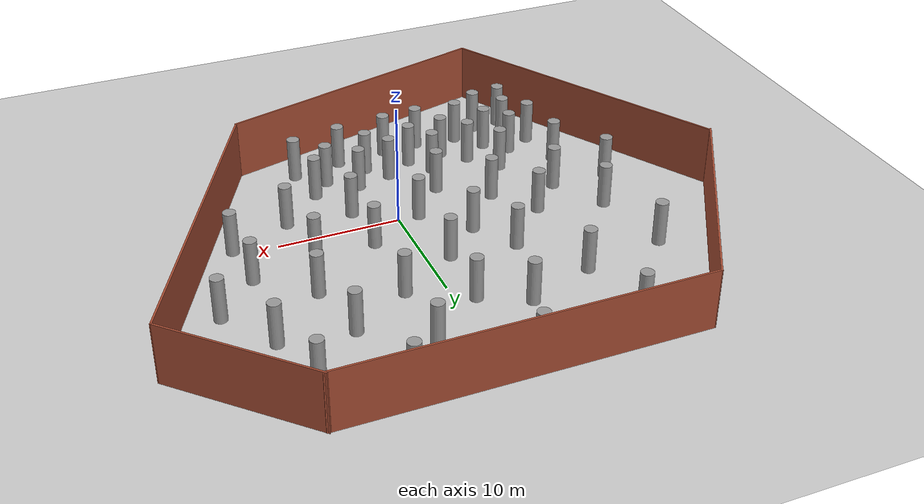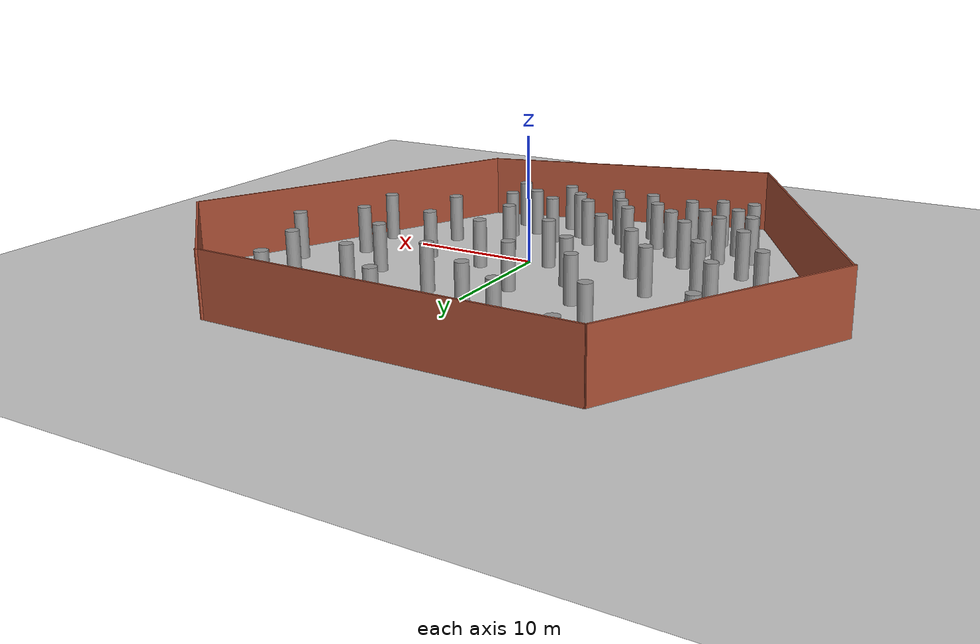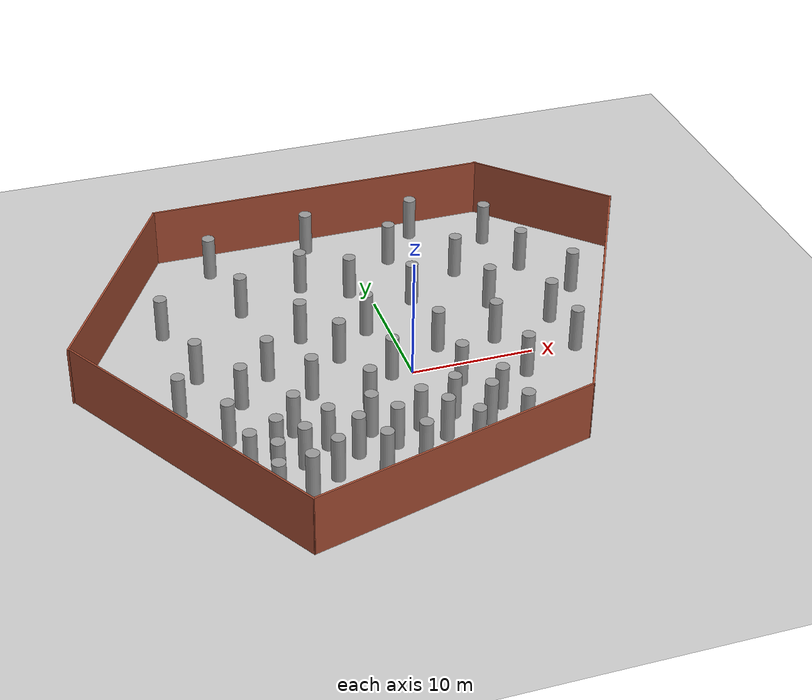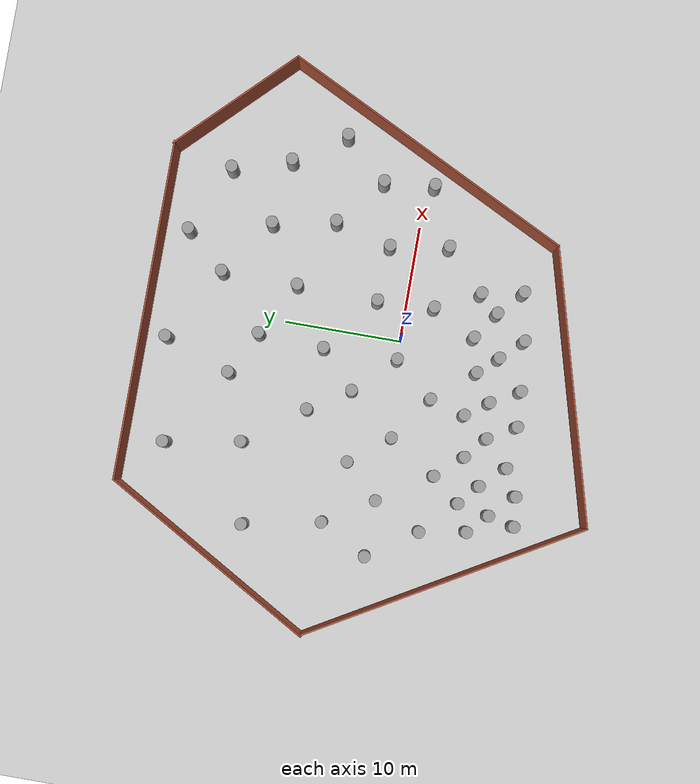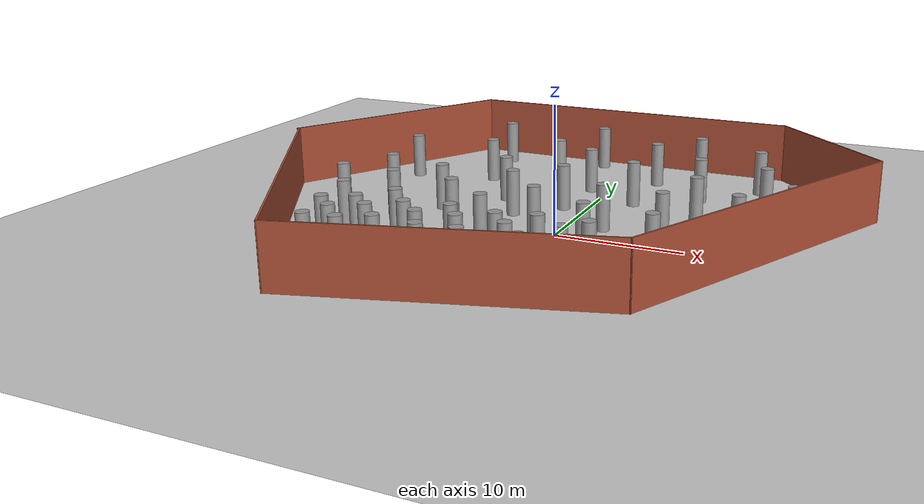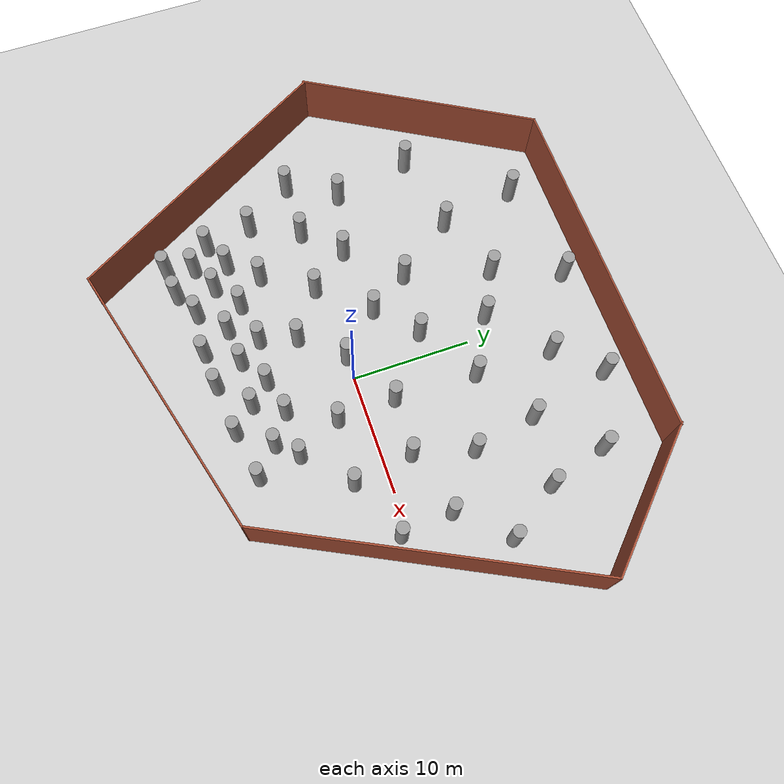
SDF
<sdf version="1.7">
 <world name="default">
  <light name="sun" type="directional">
   <pose>0 0 10 0 -0 0</pose>
   <diffuse>0.8 0.8 0.8 1</diffuse>
   <specular>0.2 0.2 0.2 1</specular>
   <attenuation>
    <range>1000</range>
    <constant>0.9</constant>
    <linear>0.01</linear>
    <quadratic>0.001</quadratic>
   </attenuation>
   <direction>-0.5 0.1 -0.9</direction>
   <spot><inner_angle>0</inner_angle><outer_angle>0</outer_angle><falloff>0</falloff></spot>
  </light>
  <model name="ground_plane">
   <static>1</static>
   <link name="link">
    <collision name="collision">
     <geometry><plane><normal>0 0 1</normal><size>100 100</size></plane></geometry>
     <surface>
      <contact><collide_bitmask>65535</collide_bitmask></contact>
      <friction><ode><mu>100</mu><mu2>50</mu2></ode></friction>
     </surface>
    </collision>
    <visual name="visual">
     <cast_shadows>0</cast_shadows>
     <geometry><plane><normal>0 0 1</normal><size>100 100</size></plane></geometry>
     <material>
      <script><uri>file://media/materials/scripts/gazebo.material</uri><name>Gazebo/Grey</name></script>
     </material>
    </visual>
   </link>
  </model>
  <gravity>0 0 -9.8</gravity>
  <magnetic_field>6e-06 2.3e-05 -4.2e-05</magnetic_field>
  <atmosphere type="adiabatic"/>
  <physics type="ode">
   <max_step_size>0.001</max_step_size>
   <real_time_factor>1</real_time_factor>
   <real_time_update_rate>1000</real_time_update_rate>
  </physics>
  <scene><ambient>0.4 0.4 0.4 1</ambient><background>0.7 0.7 0.7 1</background><shadows>1</shadows></scene>
  <spherical_coordinates>
   <surface_model>EARTH_WGS84</surface_model>
   <latitude_deg>0</latitude_deg>
   <longitude_deg>0</longitude_deg>
   <elevation>0</elevation>
   <heading_deg>0</heading_deg>
  </spherical_coordinates>
  <model name="avoid">
   <pose>-1.9811 1.90291 0 0 -0 0</pose>
   <link name="Wall_10">
    <collision name="Wall_10_Collision">
     <geometry><box><size>23.9853 0.15 5</size></box></geometry>
     <pose>0 0 2.5 0 -0 0</pose>
    </collision>
    <visual name="Wall_10_Visual">
     <pose>0 0 2.5 0 -0 0</pose>
     <geometry><box><size>23.9853 0.15 5</size></box></geometry>
     <material>
      <script><uri>file://media/materials/scripts/gazebo.material</uri><name>Gazebo/Bricks</name></script>
      <ambient>1 1 1 1</ambient>
     </material>
     <meta><layer>0</layer></meta>
    </visual>
    <pose>0.3566 -16.7089 0 0 -0 0.265056</pose>
   </link>
   <link name="Wall_11">
    <collision name="Wall_11_Collision">
     <geometry><box><size>27.323 0.15 5</size></box></geometry>
     <pose>0 0 2.5 0 -0 0</pose>
    </collision>
    <visual name="Wall_11_Visual">
     <pose>0 0 2.5 0 -0 0</pose>
     <geometry><box><size>27.323 0.15 5</size></box></geometry>
     <material>
      <script><uri>file://media/materials/scripts/gazebo.material</uri><name>Gazebo/Bricks</name></script>
      <ambient>1 1 1 1</ambient>
     </material>
     <meta><layer>0</layer></meta>
    </visual>
    <pose>17.9106 -1.42291 0 0 -0 1.10909</pose>
   </link>
   <link name="Wall_12">
    <collision name="Wall_12_Collision">
     <geometry><box><size>12.9631 0.15 5</size></box></geometry>
     <pose>0 0 2.5 0 -0 0</pose>
    </collision>
    <visual name="Wall_12_Visual">
     <pose>0 0 2.5 0 -0 0</pose>
     <geometry><box><size>12.9631 0.15 5</size></box></geometry>
     <material>
      <script><uri>file://media/materials/scripts/gazebo.material</uri><name>Gazebo/Bricks</name></script>
      <ambient>1 1 1 1</ambient>
     </material>
     <meta><layer>0</layer></meta>
    </visual>
    <pose>19.4461 15.2841 0 0 -0 2.35332</pose>
   </link>
   <link name="Wall_14">
    <collision name="Wall_14_Collision">
     <geometry><box><size>20.5 0.15 5</size></box></geometry>
     <pose>0 0 2.5 0 -0 0</pose>
    </collision>
    <visual name="Wall_14_Visual">
     <pose>0 0 2.5 0 -0 0</pose>
     <geometry><box><size>20.5 0.15 5</size></box></geometry>
     <material>
      <script><uri>file://media/materials/scripts/gazebo.material</uri><name>Gazebo/Bricks</name></script>
      <ambient>1 1 1 1</ambient>
     </material>
     <meta><layer>0</layer></meta>
    </visual>
    <pose>-18.8794 10.9401 0 0 -0 1.04721</pose>
   </link>
   <link name="Wall_15">
    <collision name="Wall_15_Collision">
     <geometry><box><size>29 0.15 5</size></box></geometry>
     <pose>0 0 2.5 0 -0 0</pose>
    </collision>
    <visual name="Wall_15_Visual">
     <pose>0 0 2.5 0 -0 0</pose>
     <geometry><box><size>29 0.15 5</size></box></geometry>
     <material>
      <script><uri>file://media/materials/scripts/gazebo.material</uri><name>Gazebo/Bricks</name></script>
      <ambient>1 1 1 1</ambient>
     </material>
     <meta><layer>0</layer></meta>
    </visual>
    <pose>0.6331 19.7521 0 0 -0 0</pose>
   </link>
   <link name="Wall_9">
    <collision name="Wall_9_Collision">
     <geometry><box><size>25.5 0.15 5</size></box></geometry>
     <pose>0 0 2.5 0 -0 0</pose>
    </collision>
    <visual name="Wall_9_Visual">
     <pose>0 0 2.5 0 -0 0</pose>
     <geometry><box><size>25.5 0.15 5</size></box></geometry>
     <material>
      <script><uri>file://media/materials/scripts/gazebo.material</uri><name>Gazebo/Bricks</name></script>
      <ambient>1 1 1 1</ambient>
     </material>
     <meta><layer>0</layer></meta>
    </visual>
    <pose>-17.4824 -8.85391 0 0 -0 -1.0472</pose>
   </link>
   <static>1</static>
  </model>
  <model name="unit_cylinder">
   <static>1</static>
   <pose>-4.99276 3.39384 1.85113 0 -0 0.001264</pose>
   <link name="link">
    <inertial>
     <mass>1</mass>
     <inertia><ixx>0.145833</ixx><ixy>0</ixy><ixz>0</ixz><iyy>0.145833</iyy><iyz>0</iyz><izz>0.125</izz></inertia>
    </inertial>
    <visual name="visual">
     <geometry><cylinder><radius>0.52513</radius><length>3.70228</length></cylinder></geometry>
     <material>
      <script><name>Gazebo/Grey</name><uri>file://media/materials/scripts/gazebo.material</uri></script>
     </material>
    </visual>
   </link>
  </model>
  <model name="unit_cylinder_clone">
   <static>1</static>
   <static>1</static>
   <pose>-7.19076 6.86652 1.85113 0 -0 0.001264</pose>
   <link name="link">
    <inertial>
     <mass>1</mass>
     <inertia><ixx>0.145833</ixx><ixy>0</ixy><ixz>0</ixz><iyy>0.145833</iyy><iyz>0</iyz><izz>0.125</izz></inertia>
    </inertial>
    <visual name="visual">
     <geometry><cylinder><radius>0.525129</radius><length>3.70228</length></cylinder></geometry>
     <material>
      <script><name>Gazebo/Grey</name><uri>file://media/materials/scripts/gazebo.material</uri></script>
     </material>
    </visual>
   </link>
  </model>
  <model name="unit_cylinder_clone_0">
   <static>1</static>
   <pose>-1.8346 6.35455 1.85113 0 -0 0.001264</pose>
   <link name="link">
    <inertial>
     <mass>1</mass>
     <inertia><ixx>0.145833</ixx><ixy>0</ixy><ixz>0</ixz><iyy>0.145833</iyy><iyz>0</iyz><izz>0.125</izz></inertia>
    </inertial>
    <visual name="visual">
     <geometry><cylinder><radius>0.525129</radius><length>3.70228</length></cylinder></geometry>
     <material>
      <script><name>Gazebo/Grey</name><uri>file://media/materials/scripts/gazebo.material</uri></script>
     </material>
    </visual>
   </link>
  </model>
  <model name="unit_cylinder_clone_1">
   <static>1</static>
   <pose>-10.9875 2.73047 1.85113 0 -0 0.001264</pose>
   <link name="link">
    <inertial>
     <mass>1</mass>
     <inertia><ixx>0.145833</ixx><ixy>0</ixy><ixz>0</ixz><iyy>0.145833</iyy><iyz>0</iyz><izz>0.125</izz></inertia>
    </inertial>
    <visual name="visual">
     <geometry><cylinder><radius>0.525129</radius><length>3.70228</length></cylinder></geometry>
     <material>
      <script><name>Gazebo/Grey</name><uri>file://media/materials/scripts/gazebo.material</uri></script>
     </material>
    </visual>
   </link>
  </model>
  <model name="unit_cylinder_clone_2">
   <static>1</static>
   <pose>-10.8182 11.8688 1.85113 0 -0 0.001264</pose>
   <link name="link">
    <inertial>
     <mass>1</mass>
     <inertia><ixx>0.145833</ixx><ixy>0</ixy><ixz>0</ixz><iyy>0.145833</iyy><iyz>0</iyz><izz>0.125</izz></inertia>
    </inertial>
    <visual name="visual">
     <geometry><cylinder><radius>0.525129</radius><length>3.70228</length></cylinder></geometry>
     <material>
      <script><name>Gazebo/Grey</name><uri>file://media/materials/scripts/gazebo.material</uri></script>
     </material>
    </visual>
   </link>
  </model>
  <model name="unit_cylinder_clone_3">
   <static>1</static>
   <pose>-5.22178 13.9601 1.85113 0 -0 0.001264</pose>
   <link name="link">
    <inertial>
     <mass>1</mass>
     <inertia><ixx>0.145833</ixx><ixy>0</ixy><ixz>0</ixz><iyy>0.145833</iyy><iyz>0</iyz><izz>0.125</izz></inertia>
    </inertial>
    <visual name="visual">
     <geometry><cylinder><radius>0.525129</radius><length>3.70228</length></cylinder></geometry>
     <material>
      <script><name>Gazebo/Grey</name><uri>file://media/materials/scripts/gazebo.material</uri></script>
     </material>
    </visual>
   </link>
  </model>
  <model name="unit_cylinder_clone_4">
   <static>1</static>
   <pose>3.07816 9.47574 1.85113 0 -0 0.001264</pose>
   <link name="link">
    <inertial>
     <mass>1</mass>
     <inertia><ixx>0.145833</ixx><ixy>0</ixy><ixz>0</ixz><iyy>0.145833</iyy><iyz>0</iyz><izz>0.125</izz></inertia>
    </inertial>
    <visual name="visual">
     <geometry><cylinder><radius>0.525129</radius><length>3.70228</length></cylinder></geometry>
     <material>
      <script><name>Gazebo/Grey</name><uri>file://media/materials/scripts/gazebo.material</uri></script>
     </material>
    </visual>
   </link>
  </model>
  <model name="unit_cylinder_clone_5">
   <static>1</static>
   <pose>2.93636 2.53057 1.85113 0 -0 0.001264</pose>
   <link name="link">
    <inertial>
     <mass>1</mass>
     <inertia><ixx>0.145833</ixx><ixy>0</ixy><ixz>0</ixz><iyy>0.145833</iyy><iyz>0</iyz><izz>0.125</izz></inertia>
    </inertial>
    <visual name="visual">
     <geometry><cylinder><radius>0.525129</radius><length>3.70228</length></cylinder></geometry>
     <material>
      <script><name>Gazebo/Grey</name><uri>file://media/materials/scripts/gazebo.material</uri></script>
     </material>
    </visual>
   </link>
  </model>
  <model name="unit_cylinder_clone_6">
   <static>1</static>
   <pose>3.13963 15.9926 1.85113 0 -0 0.001264</pose>
   <link name="link">
    <inertial>
     <mass>1</mass>
     <inertia><ixx>0.145833</ixx><ixy>0</ixy><ixz>0</ixz><iyy>0.145833</iyy><iyz>0</iyz><izz>0.125</izz></inertia>
    </inertial>
    <visual name="visual">
     <geometry><cylinder><radius>0.525129</radius><length>3.70228</length></cylinder></geometry>
     <material>
      <script><name>Gazebo/Grey</name><uri>file://media/materials/scripts/gazebo.material</uri></script>
     </material>
    </visual>
   </link>
  </model>
  <model name="unit_cylinder_clone_7">
   <static>1</static>
   <pose>7.91287 12.4801 1.85113 0 -0 0.001264</pose>
   <link name="link">
    <inertial>
     <mass>1</mass>
     <inertia><ixx>0.145833</ixx><ixy>0</ixy><ixz>0</ixz><iyy>0.145833</iyy><iyz>0</iyz><izz>0.125</izz></inertia>
    </inertial>
    <visual name="visual">
     <geometry><cylinder><radius>0.525129</radius><length>3.70228</length></cylinder></geometry>
     <material>
      <script><name>Gazebo/Grey</name><uri>file://media/materials/scripts/gazebo.material</uri></script>
     </material>
    </visual>
   </link>
  </model>
  <model name="unit_cylinder_clone_8">
   <static>1</static>
   <pose>8.99241 7.12322 1.85113 0 -0 0.001264</pose>
   <link name="link">
    <inertial>
     <mass>1</mass>
     <inertia><ixx>0.145833</ixx><ixy>0</ixy><ixz>0</ixz><iyy>0.145833</iyy><iyz>0</iyz><izz>0.125</izz></inertia>
    </inertial>
    <visual name="visual">
     <geometry><cylinder><radius>0.525129</radius><length>3.70228</length></cylinder></geometry>
     <material>
      <script><name>Gazebo/Grey</name><uri>file://media/materials/scripts/gazebo.material</uri></script>
     </material>
    </visual>
   </link>
  </model>
  <model name="unit_cylinder_clone_9">
   <static>1</static>
   <pose>12.0258 16.6922 1.85113 0 -0 0.001264</pose>
   <link name="link">
    <inertial>
     <mass>1</mass>
     <inertia><ixx>0.145833</ixx><ixy>0</ixy><ixz>0</ixz><iyy>0.145833</iyy><iyz>0</iyz><izz>0.125</izz></inertia>
    </inertial>
    <visual name="visual">
     <geometry><cylinder><radius>0.525129</radius><length>3.70228</length></cylinder></geometry>
     <material>
      <script><name>Gazebo/Grey</name><uri>file://media/materials/scripts/gazebo.material</uri></script>
     </material>
    </visual>
   </link>
  </model>
  <model name="unit_cylinder_clone_10">
   <static>1</static>
   <pose>13.511 11.7308 1.85113 0 -0 0.001264</pose>
   <link name="link">
    <inertial>
     <mass>1</mass>
     <inertia><ixx>0.145833</ixx><ixy>0</ixy><ixz>0</ixz><iyy>0.145833</iyy><iyz>0</iyz><izz>0.125</izz></inertia>
    </inertial>
    <visual name="visual">
     <geometry><cylinder><radius>0.525129</radius><length>3.70228</length></cylinder></geometry>
     <material>
      <script><name>Gazebo/Grey</name><uri>file://media/materials/scripts/gazebo.material</uri></script>
     </material>
    </visual>
   </link>
  </model>
  <model name="unit_cylinder_clone_11">
   <static>1</static>
   <pose>6.19465 19.4017 1.85113 0 -0 0.001264</pose>
   <link name="link">
    <inertial>
     <mass>1</mass>
     <inertia><ixx>0.145833</ixx><ixy>0</ixy><ixz>0</ixz><iyy>0.145833</iyy><iyz>0</iyz><izz>0.125</izz></inertia>
    </inertial>
    <visual name="visual">
     <geometry><cylinder><radius>0.525129</radius><length>3.70228</length></cylinder></geometry>
     <material>
      <script><name>Gazebo/Grey</name><uri>file://media/materials/scripts/gazebo.material</uri></script>
     </material>
    </visual>
   </link>
  </model>
  <model name="unit_cylinder_clone_12">
   <static>1</static>
   <pose>-3.11666 19.712 1.85113 0 -0 0.001264</pose>
   <link name="link">
    <inertial>
     <mass>1</mass>
     <inertia><ixx>0.145833</ixx><ixy>0</ixy><ixz>0</ixz><iyy>0.145833</iyy><iyz>0</iyz><izz>0.125</izz></inertia>
    </inertial>
    <visual name="visual">
     <geometry><cylinder><radius>0.525129</radius><length>3.70228</length></cylinder></geometry>
     <material>
      <script><name>Gazebo/Grey</name><uri>file://media/materials/scripts/gazebo.material</uri></script>
     </material>
    </visual>
   </link>
  </model>
  <model name="unit_cylinder_clone_13">
   <static>1</static>
   <pose>-11.9188 18.3435 1.85113 0 -0 0.001264</pose>
   <link name="link">
    <inertial>
     <mass>1</mass>
     <inertia><ixx>0.145833</ixx><ixy>0</ixy><ixz>0</ixz><iyy>0.145833</iyy><iyz>0</iyz><izz>0.125</izz></inertia>
    </inertial>
    <visual name="visual">
     <geometry><cylinder><radius>0.525129</radius><length>3.70228</length></cylinder></geometry>
     <material>
      <script><name>Gazebo/Grey</name><uri>file://media/materials/scripts/gazebo.material</uri></script>
     </material>
    </visual>
   </link>
  </model>
  <model name="unit_cylinder_clone_14">
   <static>1</static>
   <pose>-17.6623 10.609 1.85113 0 -0 0.001264</pose>
   <link name="link">
    <inertial>
     <mass>1</mass>
     <inertia><ixx>0.145833</ixx><ixy>0</ixy><ixz>0</ixz><iyy>0.145833</iyy><iyz>0</iyz><izz>0.125</izz></inertia>
    </inertial>
    <visual name="visual">
     <geometry><cylinder><radius>0.525129</radius><length>3.70228</length></cylinder></geometry>
     <material>
      <script><name>Gazebo/Grey</name><uri>file://media/materials/scripts/gazebo.material</uri></script>
     </material>
    </visual>
   </link>
  </model>
  <model name="unit_cylinder_clone_15">
   <static>1</static>
   <pose>-8.35884 -0.607006 1.85113 0 -0 0.001264</pose>
   <link name="link">
    <inertial>
     <mass>1</mass>
     <inertia><ixx>0.145833</ixx><ixy>0</ixy><ixz>0</ixz><iyy>0.145833</iyy><iyz>0</iyz><izz>0.125</izz></inertia>
    </inertial>
    <visual name="visual">
     <geometry><cylinder><radius>0.525129</radius><length>3.70228</length></cylinder></geometry>
     <material>
      <script><name>Gazebo/Grey</name><uri>file://media/materials/scripts/gazebo.material</uri></script>
     </material>
    </visual>
   </link>
  </model>
  <model name="unit_cylinder_clone_16">
   <static>1</static>
   <pose>-13.8003 -0.173387 1.85113 0 -0 0.001264</pose>
   <link name="link">
    <inertial>
     <mass>1</mass>
     <inertia><ixx>0.145833</ixx><ixy>0</ixy><ixz>0</ixz><iyy>0.145833</iyy><iyz>0</iyz><izz>0.125</izz></inertia>
    </inertial>
    <visual name="visual">
     <geometry><cylinder><radius>0.525129</radius><length>3.70228</length></cylinder></geometry>
     <material>
      <script><name>Gazebo/Grey</name><uri>file://media/materials/scripts/gazebo.material</uri></script>
     </material>
    </visual>
   </link>
  </model>
  <model name="unit_cylinder_clone_17">
   <static>1</static>
   <pose>-16.3505 4.00095 1.85113 0 -0 0.001264</pose>
   <link name="link">
    <inertial>
     <mass>1</mass>
     <inertia><ixx>0.145833</ixx><ixy>0</ixy><ixz>0</ixz><iyy>0.145833</iyy><iyz>0</iyz><izz>0.125</izz></inertia>
    </inertial>
    <visual name="visual">
     <geometry><cylinder><radius>0.525129</radius><length>3.70228</length></cylinder></geometry>
     <material>
      <script><name>Gazebo/Grey</name><uri>file://media/materials/scripts/gazebo.material</uri></script>
     </material>
    </visual>
   </link>
  </model>
  <model name="unit_cylinder_clone_18">
   <static>1</static>
   <pose>-18.5773 -0.068358 1.85113 0 -0 0.001264</pose>
   <link name="link">
    <inertial>
     <mass>1</mass>
     <inertia><ixx>0.145833</ixx><ixy>0</ixy><ixz>0</ixz><iyy>0.145833</iyy><iyz>0</iyz><izz>0.125</izz></inertia>
    </inertial>
    <visual name="visual">
     <geometry><cylinder><radius>0.525129</radius><length>3.70228</length></cylinder></geometry>
     <material>
      <script><name>Gazebo/Grey</name><uri>file://media/materials/scripts/gazebo.material</uri></script>
     </material>
    </visual>
   </link>
  </model>
  <model name="unit_cylinder_clone_19">
   <static>1</static>
   <pose>-15.7719 -4.2244 1.85113 0 -0 0.001264</pose>
   <link name="link">
    <inertial>
     <mass>1</mass>
     <inertia><ixx>0.145833</ixx><ixy>0</ixy><ixz>0</ixz><iyy>0.145833</iyy><iyz>0</iyz><izz>0.125</izz></inertia>
    </inertial>
    <visual name="visual">
     <geometry><cylinder><radius>0.525129</radius><length>3.70228</length></cylinder></geometry>
     <material>
      <script><name>Gazebo/Grey</name><uri>file://media/materials/scripts/gazebo.material</uri></script>
     </material>
    </visual>
   </link>
  </model>
  <model name="unit_cylinder_clone_20">
   <static>1</static>
   <pose>-10.9243 -4.67115 1.85113 0 -0 0.001264</pose>
   <link name="link">
    <inertial>
     <mass>1</mass>
     <inertia><ixx>0.145833</ixx><ixy>0</ixy><ixz>0</ixz><iyy>0.145833</iyy><iyz>0</iyz><izz>0.125</izz></inertia>
    </inertial>
    <visual name="visual">
     <geometry><cylinder><radius>0.525129</radius><length>3.70228</length></cylinder></geometry>
     <material>
      <script><name>Gazebo/Grey</name><uri>file://media/materials/scripts/gazebo.material</uri></script>
     </material>
    </visual>
   </link>
  </model>
  <model name="unit_cylinder_clone_21">
   <static>1</static>
   <pose>-4.56448 -3.31146 1.85113 0 -0 0.001264</pose>
   <link name="link">
    <inertial>
     <mass>1</mass>
     <inertia><ixx>0.145833</ixx><ixy>0</ixy><ixz>0</ixz><iyy>0.145833</iyy><iyz>0</iyz><izz>0.125</izz></inertia>
    </inertial>
    <visual name="visual">
     <geometry><cylinder><radius>0.525129</radius><length>3.70228</length></cylinder></geometry>
     <material>
      <script><name>Gazebo/Grey</name><uri>file://media/materials/scripts/gazebo.material</uri></script>
     </material>
    </visual>
   </link>
  </model>
  <model name="unit_cylinder_clone_22">
   <static>1</static>
   <pose>-1.71773 0.024852 1.85113 0 -0 0.001264</pose>
   <link name="link">
    <inertial>
     <mass>1</mass>
     <inertia><ixx>0.145833</ixx><ixy>0</ixy><ixz>0</ixz><iyy>0.145833</iyy><iyz>0</iyz><izz>0.125</izz></inertia>
    </inertial>
    <visual name="visual">
     <geometry><cylinder><radius>0.525129</radius><length>3.70228</length></cylinder></geometry>
     <material>
      <script><name>Gazebo/Grey</name><uri>file://media/materials/scripts/gazebo.material</uri></script>
     </material>
    </visual>
   </link>
  </model>
  <model name="unit_cylinder_clone_23">
   <static>1</static>
   <pose>7.67618 2.27355 1.85113 0 -0 0.001264</pose>
   <link name="link">
    <inertial>
     <mass>1</mass>
     <inertia><ixx>0.145833</ixx><ixy>0</ixy><ixz>0</ixz><iyy>0.145833</iyy><iyz>0</iyz><izz>0.125</izz></inertia>
    </inertial>
    <visual name="visual">
     <geometry><cylinder><radius>0.525129</radius><length>3.70228</length></cylinder></geometry>
     <material>
      <script><name>Gazebo/Grey</name><uri>file://media/materials/scripts/gazebo.material</uri></script>
     </material>
    </visual>
   </link>
  </model>
  <model name="unit_cylinder_clone_24">
   <static>1</static>
   <pose>3.15122 -2.31341 1.85113 0 -0 0.001264</pose>
   <link name="link">
    <inertial>
     <mass>1</mass>
     <inertia><ixx>0.145833</ixx><ixy>0</ixy><ixz>0</ixz><iyy>0.145833</iyy><iyz>0</iyz><izz>0.125</izz></inertia>
    </inertial>
    <visual name="visual">
     <geometry><cylinder><radius>0.525129</radius><length>3.70228</length></cylinder></geometry>
     <material>
      <script><name>Gazebo/Grey</name><uri>file://media/materials/scripts/gazebo.material</uri></script>
     </material>
    </visual>
   </link>
  </model>
  <model name="unit_cylinder_clone_25">
   <static>1</static>
   <pose>8.46732 -2.725 1.85113 0 -0 0.001264</pose>
   <link name="link">
    <inertial>
     <mass>1</mass>
     <inertia><ixx>0.145833</ixx><ixy>0</ixy><ixz>0</ixz><iyy>0.145833</iyy><iyz>0</iyz><izz>0.125</izz></inertia>
    </inertial>
    <visual name="visual">
     <geometry><cylinder><radius>0.525129</radius><length>3.70228</length></cylinder></geometry>
     <material>
      <script><name>Gazebo/Grey</name><uri>file://media/materials/scripts/gazebo.material</uri></script>
     </material>
    </visual>
   </link>
  </model>
  <model name="unit_cylinder_clone_26">
   <static>1</static>
   <pose>13.0214 3.68776 1.85113 0 -0 0.001264</pose>
   <link name="link">
    <inertial>
     <mass>1</mass>
     <inertia><ixx>0.145833</ixx><ixy>0</ixy><ixz>0</ixz><iyy>0.145833</iyy><iyz>0</iyz><izz>0.125</izz></inertia>
    </inertial>
    <visual name="visual">
     <geometry><cylinder><radius>0.525129</radius><length>3.70228</length></cylinder></geometry>
     <material>
      <script><name>Gazebo/Grey</name><uri>file://media/materials/scripts/gazebo.material</uri></script>
     </material>
    </visual>
   </link>
  </model>
  <model name="unit_cylinder_clone_27">
   <static>1</static>
   <pose>13.4519 -0.622612 1.85113 0 -0 0.001264</pose>
   <link name="link">
    <inertial>
     <mass>1</mass>
     <inertia><ixx>0.145833</ixx><ixy>0</ixy><ixz>0</ixz><iyy>0.145833</iyy><iyz>0</iyz><izz>0.125</izz></inertia>
    </inertial>
    <visual name="visual">
     <geometry><cylinder><radius>0.525129</radius><length>3.70228</length></cylinder></geometry>
     <material>
      <script><name>Gazebo/Grey</name><uri>file://media/materials/scripts/gazebo.material</uri></script>
     </material>
    </visual>
   </link>
  </model>
  <model name="unit_cylinder_clone_28">
   <static>1</static>
   <pose>16.4201 7.38649 1.85113 0 -0 0.001264</pose>
   <link name="link">
    <inertial>
     <mass>1</mass>
     <inertia><ixx>0.145833</ixx><ixy>0</ixy><ixz>0</ixz><iyy>0.145833</iyy><iyz>0</iyz><izz>0.125</izz></inertia>
    </inertial>
    <visual name="visual">
     <geometry><cylinder><radius>0.525129</radius><length>3.70228</length></cylinder></geometry>
     <material>
      <script><name>Gazebo/Grey</name><uri>file://media/materials/scripts/gazebo.material</uri></script>
     </material>
    </visual>
   </link>
  </model>
  <model name="unit_cylinder_clone_29">
   <static>1</static>
   <pose>-1.52866 12.0048 1.85113 0 -0 0.001264</pose>
   <link name="link">
    <inertial>
     <mass>1</mass>
     <inertia><ixx>0.145833</ixx><ixy>0</ixy><ixz>0</ixz><iyy>0.145833</iyy><iyz>0</iyz><izz>0.125</izz></inertia>
    </inertial>
    <visual name="visual">
     <geometry><cylinder><radius>0.525129</radius><length>3.70228</length></cylinder></geometry>
     <material>
      <script><name>Gazebo/Grey</name><uri>file://media/materials/scripts/gazebo.material</uri></script>
     </material>
    </visual>
   </link>
  </model>
  <model name="unit_cylinder_clone_30">
   <static>1</static>
   <pose>5.02148 -6.0563 1.85113 0 -0 0.001264</pose>
   <link name="link">
    <inertial>
     <mass>1</mass>
     <inertia><ixx>0.145833</ixx><ixy>0</ixy><ixz>0</ixz><iyy>0.145833</iyy><iyz>0</iyz><izz>0.125</izz></inertia>
    </inertial>
    <visual name="visual">
     <geometry><cylinder><radius>0.525129</radius><length>3.70228</length></cylinder></geometry>
     <material>
      <script><name>Gazebo/Grey</name><uri>file://media/materials/scripts/gazebo.material</uri></script>
     </material>
    </visual>
   </link>
  </model>
  <model name="unit_cylinder_clone_31">
   <static>1</static>
   <pose>3.55973 -7.66866 1.85113 0 -0 0.001264</pose>
   <link name="link">
    <inertial>
     <mass>1</mass>
     <inertia><ixx>0.145833</ixx><ixy>0</ixy><ixz>0</ixz><iyy>0.145833</iyy><iyz>0</iyz><izz>0.125</izz></inertia>
    </inertial>
    <visual name="visual">
     <geometry><cylinder><radius>0.525129</radius><length>3.70228</length></cylinder></geometry>
     <material>
      <script><name>Gazebo/Grey</name><uri>file://media/materials/scripts/gazebo.material</uri></script>
     </material>
    </visual>
   </link>
  </model>
  <model name="unit_cylinder_clone_32">
   <static>1</static>
   <pose>5.70228 -9.60648 1.85113 0 -0 0.001264</pose>
   <link name="link">
    <inertial>
     <mass>1</mass>
     <inertia><ixx>0.145833</ixx><ixy>0</ixy><ixz>0</ixz><iyy>0.145833</iyy><iyz>0</iyz><izz>0.125</izz></inertia>
    </inertial>
    <visual name="visual">
     <geometry><cylinder><radius>0.525129</radius><length>3.70228</length></cylinder></geometry>
     <material>
      <script><name>Gazebo/Grey</name><uri>file://media/materials/scripts/gazebo.material</uri></script>
     </material>
    </visual>
   </link>
  </model>
  <model name="unit_cylinder_clone_33">
   <static>1</static>
   <pose>1.62375 -10.3336 1.85113 0 -0 0.001264</pose>
   <link name="link">
    <inertial>
     <mass>1</mass>
     <inertia><ixx>0.145833</ixx><ixy>0</ixy><ixz>0</ixz><iyy>0.145833</iyy><iyz>0</iyz><izz>0.125</izz></inertia>
    </inertial>
    <visual name="visual">
     <geometry><cylinder><radius>0.525129</radius><length>3.70228</length></cylinder></geometry>
     <material>
      <script><name>Gazebo/Grey</name><uri>file://media/materials/scripts/gazebo.material</uri></script>
     </material>
    </visual>
   </link>
  </model>
  <model name="unit_cylinder_clone_34">
   <static>1</static>
   <pose>1.22268 -6.06858 1.85113 0 -0 0.001264</pose>
   <link name="link">
    <inertial>
     <mass>1</mass>
     <inertia><ixx>0.145833</ixx><ixy>0</ixy><ixz>0</ixz><iyy>0.145833</iyy><iyz>0</iyz><izz>0.125</izz></inertia>
    </inertial>
    <visual name="visual">
     <geometry><cylinder><radius>0.525129</radius><length>3.70228</length></cylinder></geometry>
     <material>
      <script><name>Gazebo/Grey</name><uri>file://media/materials/scripts/gazebo.material</uri></script>
     </material>
    </visual>
   </link>
  </model>
  <model name="unit_cylinder_clone_35">
   <static>1</static>
   <pose>-0.157467 -8.46058 1.85113 0 -0 0.001264</pose>
   <link name="link">
    <inertial>
     <mass>1</mass>
     <inertia><ixx>0.145833</ixx><ixy>0</ixy><ixz>0</ixz><iyy>0.145833</iyy><iyz>0</iyz><izz>0.125</izz></inertia>
    </inertial>
    <visual name="visual">
     <geometry><cylinder><radius>0.525129</radius><length>3.70228</length></cylinder></geometry>
     <material>
      <script><name>Gazebo/Grey</name><uri>file://media/materials/scripts/gazebo.material</uri></script>
     </material>
    </visual>
   </link>
  </model>
  <model name="unit_cylinder_clone_36">
   <static>1</static>
   <pose>-1.68771 -6.77819 1.85113 0 -0 0.001264</pose>
   <link name="link">
    <inertial>
     <mass>1</mass>
     <inertia><ixx>0.145833</ixx><ixy>0</ixy><ixz>0</ixz><iyy>0.145833</iyy><iyz>0</iyz><izz>0.125</izz></inertia>
    </inertial>
    <visual name="visual">
     <geometry><cylinder><radius>0.525129</radius><length>3.70228</length></cylinder></geometry>
     <material>
      <script><name>Gazebo/Grey</name><uri>file://media/materials/scripts/gazebo.material</uri></script>
     </material>
    </visual>
   </link>
  </model>
  <model name="unit_cylinder_clone_37">
   <static>1</static>
   <pose>-2.62275 -10.7298 1.85113 0 -0 0.001264</pose>
   <link name="link">
    <inertial>
     <mass>1</mass>
     <inertia><ixx>0.145833</ixx><ixy>0</ixy><ixz>0</ixz><iyy>0.145833</iyy><iyz>0</iyz><izz>0.125</izz></inertia>
    </inertial>
    <visual name="visual">
     <geometry><cylinder><radius>0.525129</radius><length>3.70228</length></cylinder></geometry>
     <material>
      <script><name>Gazebo/Grey</name><uri>file://media/materials/scripts/gazebo.material</uri></script>
     </material>
    </visual>
   </link>
  </model>
  <model name="unit_cylinder_clone_38">
   <static>1</static>
   <pose>-4.00925 -8.27535 1.85113 0 -0 0.001264</pose>
   <link name="link">
    <inertial>
     <mass>1</mass>
     <inertia><ixx>0.145833</ixx><ixy>0</ixy><ixz>0</ixz><iyy>0.145833</iyy><iyz>0</iyz><izz>0.125</izz></inertia>
    </inertial>
    <visual name="visual">
     <geometry><cylinder><radius>0.525129</radius><length>3.70228</length></cylinder></geometry>
     <material>
      <script><name>Gazebo/Grey</name><uri>file://media/materials/scripts/gazebo.material</uri></script>
     </material>
    </visual>
   </link>
  </model>
  <model name="unit_cylinder_clone_39">
   <static>1</static>
   <pose>-5.41795 -6.34609 1.85113 0 -0 0.001264</pose>
   <link name="link">
    <inertial>
     <mass>1</mass>
     <inertia><ixx>0.145833</ixx><ixy>0</ixy><ixz>0</ixz><iyy>0.145833</iyy><iyz>0</iyz><izz>0.125</izz></inertia>
    </inertial>
    <visual name="visual">
     <geometry><cylinder><radius>0.525129</radius><length>3.70228</length></cylinder></geometry>
     <material>
      <script><name>Gazebo/Grey</name><uri>file://media/materials/scripts/gazebo.material</uri></script>
     </material>
    </visual>
   </link>
  </model>
  <model name="unit_cylinder_clone_40">
   <static>1</static>
   <pose>-5.65555 -10.9179 1.85113 0 -0 0.001264</pose>
   <link name="link">
    <inertial>
     <mass>1</mass>
     <inertia><ixx>0.145833</ixx><ixy>0</ixy><ixz>0</ixz><iyy>0.145833</iyy><iyz>0</iyz><izz>0.125</izz></inertia>
    </inertial>
    <visual name="visual">
     <geometry><cylinder><radius>0.525129</radius><length>3.70228</length></cylinder></geometry>
     <material>
      <script><name>Gazebo/Grey</name><uri>file://media/materials/scripts/gazebo.material</uri></script>
     </material>
    </visual>
   </link>
  </model>
  <model name="unit_cylinder_clone_41">
   <static>1</static>
   <pose>-7.05445 -8.54393 1.85113 0 -0 0.001264</pose>
   <link name="link">
    <inertial>
     <mass>1</mass>
     <inertia><ixx>0.145833</ixx><ixy>0</ixy><ixz>0</ixz><iyy>0.145833</iyy><iyz>0</iyz><izz>0.125</izz></inertia>
    </inertial>
    <visual name="visual">
     <geometry><cylinder><radius>0.525129</radius><length>3.70228</length></cylinder></geometry>
     <material>
      <script><name>Gazebo/Grey</name><uri>file://media/materials/scripts/gazebo.material</uri></script>
     </material>
    </visual>
   </link>
  </model>
  <model name="unit_cylinder_clone_42">
   <static>1</static>
   <pose>-8.90738 -6.93996 1.85113 0 -0 0.001264</pose>
   <link name="link">
    <inertial>
     <mass>1</mass>
     <inertia><ixx>0.145833</ixx><ixy>0</ixy><ixz>0</ixz><iyy>0.145833</iyy><iyz>0</iyz><izz>0.125</izz></inertia>
    </inertial>
    <visual name="visual">
     <geometry><cylinder><radius>0.525129</radius><length>3.70228</length></cylinder></geometry>
     <material>
      <script><name>Gazebo/Grey</name><uri>file://media/materials/scripts/gazebo.material</uri></script>
     </material>
    </visual>
   </link>
  </model>
  <model name="unit_cylinder_clone_43">
   <static>1</static>
   <pose>-9.23946 -10.5967 1.85113 0 -0 0.001264</pose>
   <link name="link">
    <inertial>
     <mass>1</mass>
     <inertia><ixx>0.145833</ixx><ixy>0</ixy><ixz>0</ixz><iyy>0.145833</iyy><iyz>0</iyz><izz>0.125</izz></inertia>
    </inertial>
    <visual name="visual">
     <geometry><cylinder><radius>0.525129</radius><length>3.70228</length></cylinder></geometry>
     <material>
      <script><name>Gazebo/Grey</name><uri>file://media/materials/scripts/gazebo.material</uri></script>
     </material>
    </visual>
   </link>
  </model>
  <model name="unit_cylinder_clone_44">
   <static>1</static>
   <pose>-11.1262 -8.57364 1.85113 0 -0 0.001264</pose>
   <link name="link">
    <inertial>
     <mass>1</mass>
     <inertia><ixx>0.145833</ixx><ixy>0</ixy><ixz>0</ixz><iyy>0.145833</iyy><iyz>0</iyz><izz>0.125</izz></inertia>
    </inertial>
    <visual name="visual">
     <geometry><cylinder><radius>0.525129</radius><length>3.70228</length></cylinder></geometry>
     <material>
      <script><name>Gazebo/Grey</name><uri>file://media/materials/scripts/gazebo.material</uri></script>
     </material>
    </visual>
   </link>
  </model>
  <model name="unit_cylinder_clone_45">
   <static>1</static>
   <pose>-12.8587 -7.05267 1.85113 0 -0 0.001264</pose>
   <link name="link">
    <inertial>
     <mass>1</mass>
     <inertia><ixx>0.145833</ixx><ixy>0</ixy><ixz>0</ixz><iyy>0.145833</iyy><iyz>0</iyz><izz>0.125</izz></inertia>
    </inertial>
    <visual name="visual">
     <geometry><cylinder><radius>0.525129</radius><length>3.70228</length></cylinder></geometry>
     <material>
      <script><name>Gazebo/Grey</name><uri>file://media/materials/scripts/gazebo.material</uri></script>
     </material>
    </visual>
   </link>
  </model>
  <model name="unit_cylinder_clone_46">
   <static>1</static>
   <pose>-13.4463 -9.76061 1.85113 0 -0 0.001264</pose>
   <link name="link">
    <inertial>
     <mass>1</mass>
     <inertia><ixx>0.145833</ixx><ixy>0</ixy><ixz>0</ixz><iyy>0.145833</iyy><iyz>0</iyz><izz>0.125</izz></inertia>
    </inertial>
    <visual name="visual">
     <geometry><cylinder><radius>0.525129</radius><length>3.70228</length></cylinder></geometry>
     <material>
      <script><name>Gazebo/Grey</name><uri>file://media/materials/scripts/gazebo.material</uri></script>
     </material>
    </visual>
   </link>
  </model>
  <model name="unit_cylinder_clone_47">
   <static>1</static>
   <pose>-15.1133 -8.16886 1.85113 0 -0 0.001264</pose>
   <link name="link">
    <inertial>
     <mass>1</mass>
     <inertia><ixx>0.145833</ixx><ixy>0</ixy><ixz>0</ixz><iyy>0.145833</iyy><iyz>0</iyz><izz>0.125</izz></inertia>
    </inertial>
    <visual name="visual">
     <geometry><cylinder><radius>0.525129</radius><length>3.70228</length></cylinder></geometry>
     <material>
      <script><name>Gazebo/Grey</name><uri>file://media/materials/scripts/gazebo.material</uri></script>
     </material>
    </visual>
   </link>
  </model>
  <model name="unit_cylinder_clone_48">
   <static>1</static>
   <pose>-11.4694 -11.7539 1.85113 0 -0 0.001264</pose>
   <link name="link">
    <inertial>
     <mass>1</mass>
     <inertia><ixx>0.145833</ixx><ixy>0</ixy><ixz>0</ixz><iyy>0.145833</iyy><iyz>0</iyz><izz>0.125</izz></inertia>
    </inertial>
    <visual name="visual">
     <geometry><cylinder><radius>0.525129</radius><length>3.70228</length></cylinder></geometry>
     <material>
      <script><name>Gazebo/Grey</name><uri>file://media/materials/scripts/gazebo.material</uri></script>
     </material>
    </visual>
   </link>
  </model>
  <model name="unit_cylinder_clone_49">
   <pose>-13.9885 -12.0145 1.85113 0 -0 0.001264</pose>
   <link name="link">
    <inertial>
     <mass>1</mass>
     <inertia><ixx>0.145833</ixx><ixy>0</ixy><ixz>0</ixz><iyy>0.145833</iyy><iyz>0</iyz><izz>0.125</izz></inertia>
    </inertial>
    <visual name="visual">
     <geometry><cylinder><radius>0.525129</radius><length>3.70228</length></cylinder></geometry>
     <material>
      <script><name>Gazebo/Grey</name><uri>file://media/materials/scripts/gazebo.material</uri></script>
     </material>
    </visual>
   </link>
  </model>
 </world>
</sdf>
